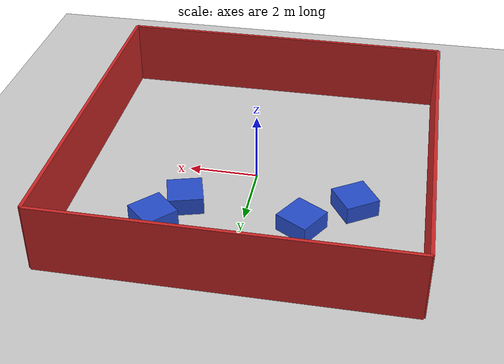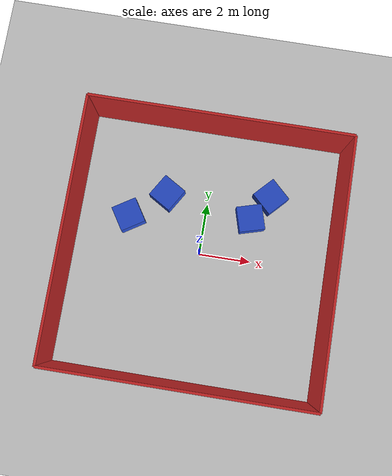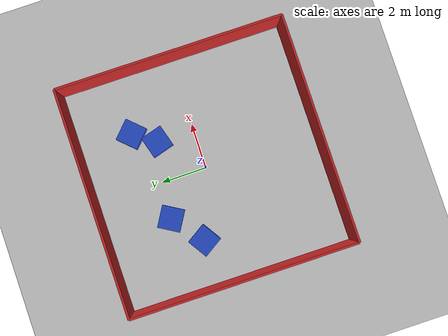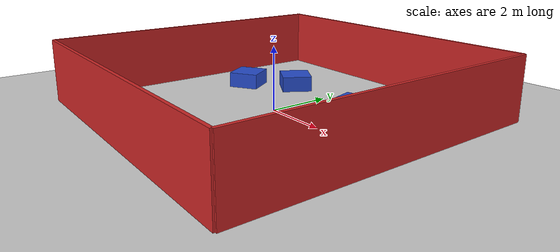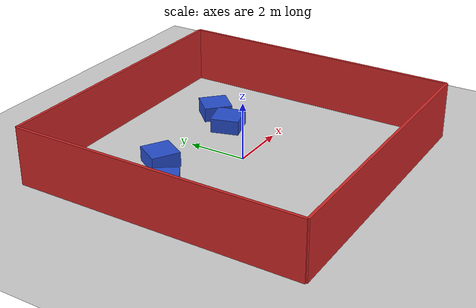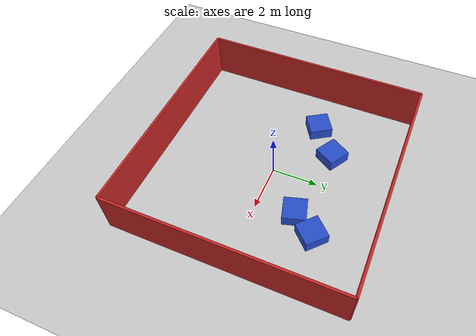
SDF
<sdf version="1.8">
 <world name="demo">
  <plugin filename="ignition-gazebo-physics-system" name="ignition::gazebo::systems::Physics"/>
  <plugin filename="ignition-gazebo-sensors-system" name="ignition::gazebo::systems::Sensors">
   <render_engine>ogre2</render_engine>
  </plugin>
  <plugin filename="ignition-gazebo-scene-broadcaster-system" name="ignition::gazebo::systems::SceneBroadcaster"/>
  <plugin filename="ignition-gazebo-user-commands-system" name="ignition::gazebo::systems::UserCommands"/>
  <light name="sun" type="directional">
   <pose>0 0 10 0 0 0</pose>
   <diffuse>0.8 0.8 0.8 1</diffuse>
   <specular>0.2 0.2 0.2 1</specular>
   <attenuation>
    <range>1000</range>
    <constant>0.9</constant>
    <linear>0.01</linear>
    <quadratic>0.001</quadratic>
   </attenuation>
   <direction>-0.5 0.1 -0.9</direction>
  </light>
  <model name="ground_plane">
   <static>true</static>
   <link name="link">
    <collision name="collision">
     <geometry><plane><normal>0 0 1</normal><size>100 100</size></plane></geometry>
    </collision>
    <visual name="visual">
     <geometry><plane><normal>0 0 1</normal><size>100 100</size></plane></geometry>
     <material>
      <ambient>0.8 0.8 0.8 1</ambient>
      <diffuse>0.8 0.8 0.8 1</diffuse>
      <specular>0.8 0.8 0.8 1</specular>
     </material>
    </visual>
   </link>
  </model>
  <model name="enclosing_wall_1">
   <pose>5 0 1.0 0 0 1.57</pose>
   <static>true</static>
   <link name="link">
    <collision name="collision"><geometry><box><size>10 0.1 2</size></box></geometry></collision>
    <visual name="visual">
     <geometry><box><size>10 0.1 2</size></box></geometry>
     <material>
      <script><uri>file://media/materials/scripts/gazebo.material</uri><name>Gazebo/Red</name></script>
     </material>
    </visual>
   </link>
  </model>
  <model name="enclosing_wall_2">
   <pose>0 5 1.0 0 0 0</pose>
   <static>true</static>
   <link name="link">
    <collision name="collision"><geometry><box><size>10 0.1 2</size></box></geometry></collision>
    <visual name="visual">
     <geometry><box><size>10 0.1 2</size></box></geometry>
     <material>
      <script><uri>file://media/materials/scripts/gazebo.material</uri><name>Gazebo/Red</name></script>
     </material>
    </visual>
   </link>
  </model>
  <model name="enclosing_wall_3">
   <pose>-5 0 1.0 0 0 1.57</pose>
   <static>true</static>
   <link name="link">
    <collision name="collision"><geometry><box><size>10 0.1 2</size></box></geometry></collision>
    <visual name="visual">
     <geometry><box><size>10 0.1 2</size></box></geometry>
     <material>
      <script><uri>file://media/materials/scripts/gazebo.material</uri><name>Gazebo/Red</name></script>
     </material>
    </visual>
   </link>
  </model>
  <model name="enclosing_wall_4">
   <pose>0 -5 1.0 0 0 0</pose>
   <static>true</static>
   <link name="link">
    <collision name="collision"><geometry><box><size>10 0.1 2</size></box></geometry></collision>
    <visual name="visual">
     <geometry><box><size>10 0.1 2</size></box></geometry>
     <material>
      <script><uri>file://media/materials/scripts/gazebo.material</uri><name>Gazebo/Red</name></script>
     </material>
    </visual>
   </link>
  </model>
  <model name="random_cube_1">
   <pose>2.409727091745361 2.6306393115545403 0 0 0 2.3812561156082985</pose>
   <static>true</static>
   <link name="link">
    <collision name="collision"><geometry><box><size>1 1 1</size></box></geometry></collision>
    <visual name="visual">
     <geometry><box><size>1 1 1</size></box></geometry>
     <material>
      <script><uri>file://media/materials/scripts/gazebo.material</uri><name>Gazebo/Blue</name></script>
     </material>
    </visual>
   </link>
  </model>
  <model name="random_cube_2">
   <pose>-1.6260959283002805 2.142762227582428 0 0 0 5.743275858673036</pose>
   <static>true</static>
   <link name="link">
    <collision name="collision"><geometry><box><size>1 1 1</size></box></geometry></collision>
    <visual name="visual">
     <geometry><box><size>1 1 1</size></box></geometry>
     <material>
      <script><uri>file://media/materials/scripts/gazebo.material</uri><name>Gazebo/Blue</name></script>
     </material>
    </visual>
   </link>
  </model>
  <model name="random_cube_3">
   <pose>-2.974681742582487 1.0581258802665299 0 0 0 5.279104918321666</pose>
   <static>true</static>
   <link name="link">
    <collision name="collision"><geometry><box><size>1 1 1</size></box></geometry></collision>
    <visual name="visual">
     <geometry><box><size>1 1 1</size></box></geometry>
     <material>
      <script><uri>file://media/materials/scripts/gazebo.material</uri><name>Gazebo/Blue</name></script>
     </material>
    </visual>
   </link>
  </model>
  <model name="random_cube_4">
   <pose>1.7444226391367625 1.6630937487482575 0 0 0 4.994508672605452</pose>
   <static>true</static>
   <link name="link">
    <collision name="collision"><geometry><box><size>1 1 1</size></box></geometry></collision>
    <visual name="visual">
     <geometry><box><size>1 1 1</size></box></geometry>
     <material>
      <script><uri>file://media/materials/scripts/gazebo.material</uri><name>Gazebo/Blue</name></script>
     </material>
    </visual>
   </link>
  </model>
 </world>
</sdf>
